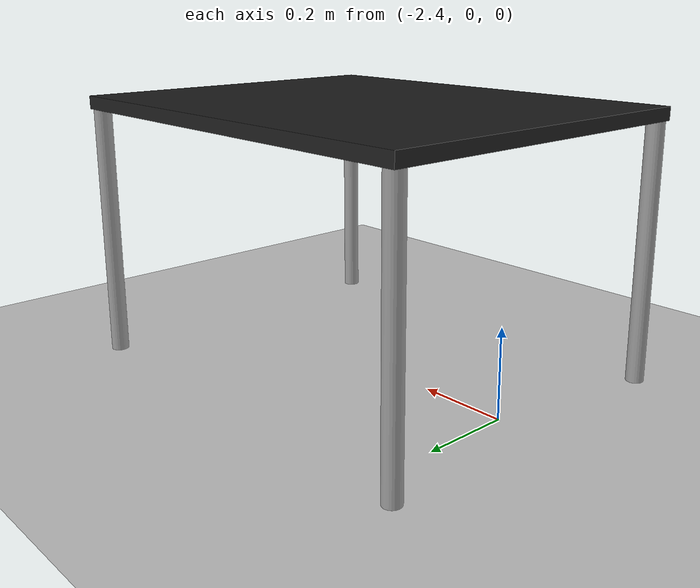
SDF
<sdf version="1.4">
    <world name="default">
      <include>
        <uri>model://sun</uri>
      </include>
      <include>
        <uri>model://ground_plane</uri>
      </include>
      <include>
        <uri>model://table</uri>
        <pose>-2.0 0 0 0 0 0</pose>
      </include>
      ...
    </world>
  </sdf>

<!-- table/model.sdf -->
<sdf version="1.5">
  <model name="table">
    <static>true</static>
    <link name="link">
      <collision name="surface">
        <pose>0 0 0.6 0 0 0</pose>
        <geometry>
          <box>
            <size>1.5 0.8 0.03</size>
          </box>
        </geometry>
        <surface>
          <friction>
            <ode>
              <mu>0.6</mu>
              <mu2>0.6</mu2>
            </ode>
          </friction>
        </surface>
      </collision>
      <visual name="visual1">
        <pose>0 0 0.6 0 0 0</pose>
        <geometry>
          <box>
            <size>1 0.8 0.03</size>
          </box>
        </geometry>
        <material>
          <script>
            <uri>file://media/materials/scripts/gazebo.material</uri>
            <name>Gazebo/Black</name>
          </script>
        </material>
      </visual>
      <collision name="front_left_leg">
        <pose>0.48 0.38 0.3 0 0 0</pose>
        <geometry>
          <cylinder>
            <radius>0.02</radius>
            <length>1.0</length>
          </cylinder>
        </geometry>
      </collision>
      <visual name="front_left_leg">
        <pose>0.48 0.38 0.3 0 0 0</pose>
        <geometry>
          <cylinder>
            <radius>0.02</radius>
            <length>0.6</length>
          </cylinder>
        </geometry>
        <material>
          <script>
            <uri>file://media/materials/scripts/gazebo.material</uri>
            <name>Gazebo/Grey</name>
          </script>
        </material>
      </visual>
      <collision name="front_right_leg">
        <pose>0.48 -0.38 0.3 0 0 0</pose>
        <geometry>
          <cylinder>
            <radius>0.02</radius>
            <length>1.0</length>
          </cylinder>
        </geometry>
      </collision>
      <visual name="front_right_leg">
        <pose>0.48 -0.38 0.3 0 0 0</pose>
        <geometry>
          <cylinder>
            <radius>0.02</radius>
            <length>0.6</length>
          </cylinder>
        </geometry>
        <material>
          <script>
            <uri>file://media/materials/scripts/gazebo.material</uri>
            <name>Gazebo/Grey</name>
          </script>
        </material>
      </visual>
      <collision name="back_right_leg">
        <pose>-0.48 -0.38 0.3 0 0 0</pose>
        <geometry>
          <cylinder>
            <radius>0.02</radius>
            <length>0.6</length>
          </cylinder>
        </geometry>
      </collision>
      <visual name="back_right_leg">
        <pose>-0.48 -0.38 0.3 0 0 0</pose>
        <geometry>
          <cylinder>
            <radius>0.02</radius>
            <length>0.6</length>
          </cylinder>
        </geometry>
        <material>
          <script>
            <uri>file://media/materials/scripts/gazebo.material</uri>
            <name>Gazebo/Grey</name>
          </script>
        </material>
      </visual>
      <collision name="back_left_leg">
        <pose>-0.48 0.38 0.3 0 0 0</pose>
        <geometry>
          <cylinder>
            <radius>0.02</radius>
            <length>0.6</length>
          </cylinder>
        </geometry>
      </collision>
      <visual name="back_left_leg">
        <pose>-0.48 0.38 0.3 0 0 0</pose>
        <geometry>
          <cylinder>
            <radius>0.02</radius>
            <length>0.6</length>
          </cylinder>
        </geometry>
        <material>
          <script>
            <uri>file://media/materials/scripts/gazebo.material</uri>
            <name>Gazebo/Grey</name>
          </script>
        </material>
      </visual>
    </link>
  </model>
</sdf>
